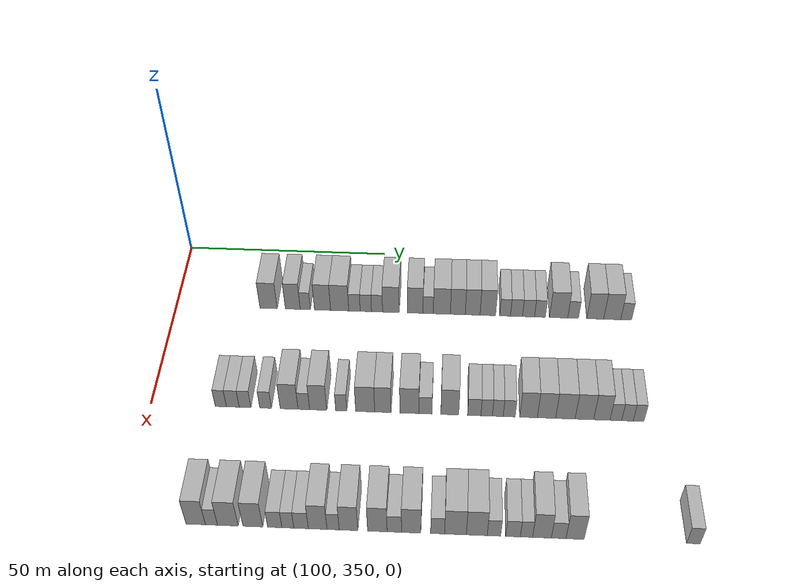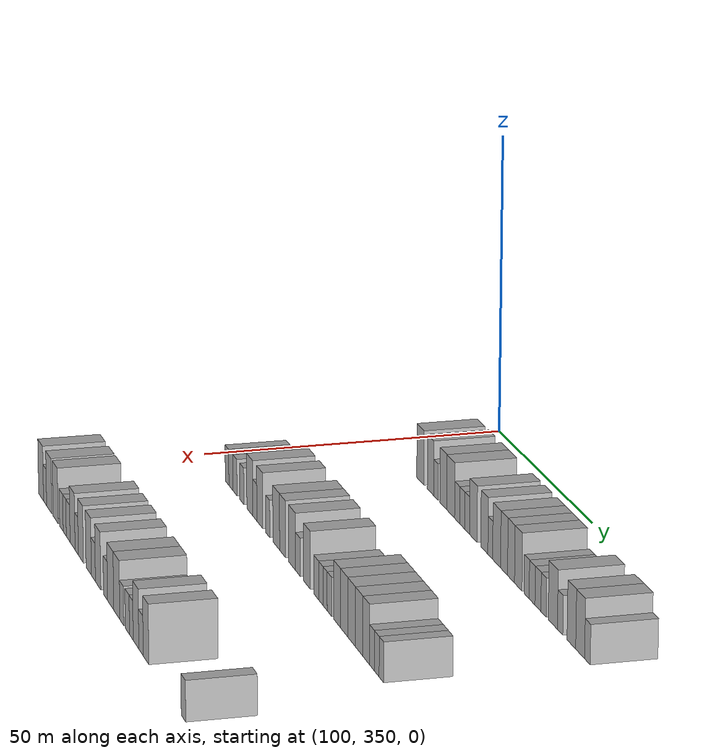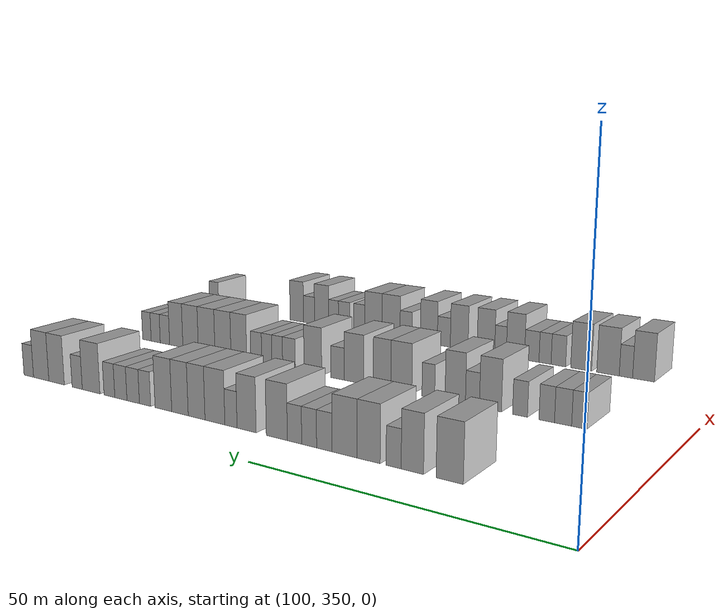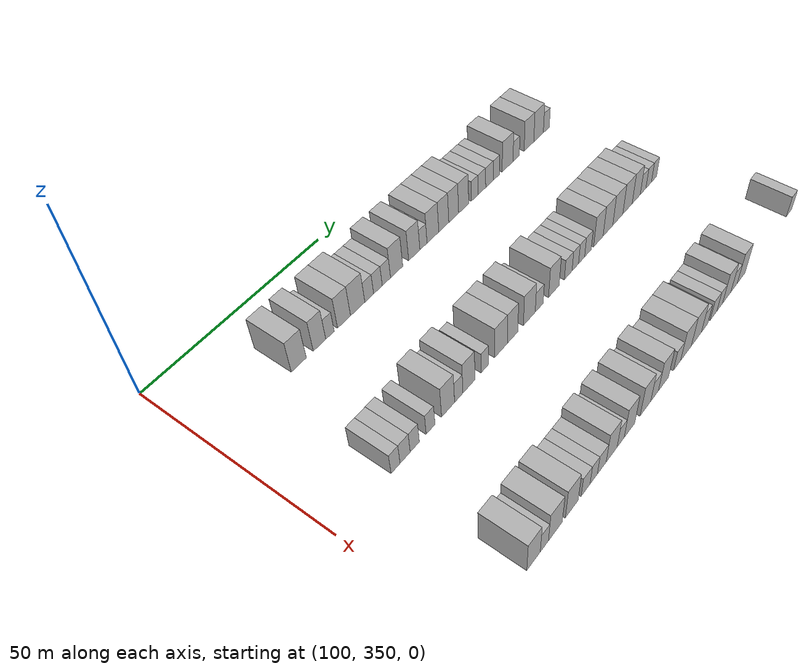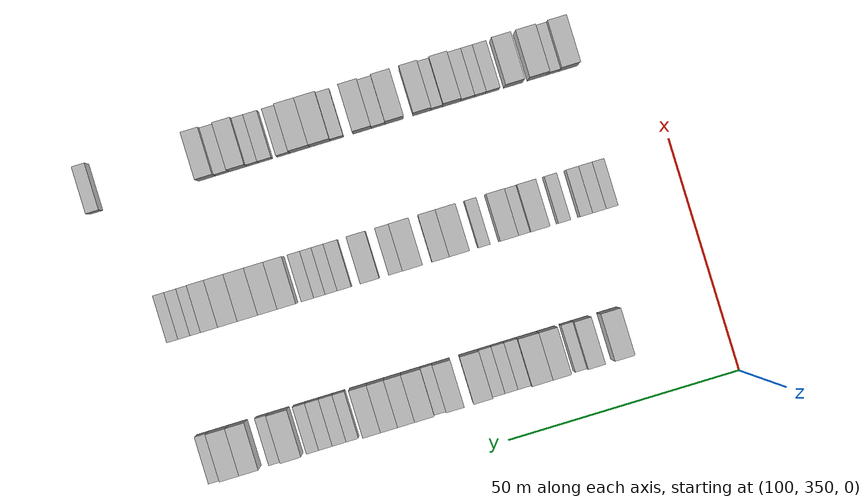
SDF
<sdf version="1.6">
 <world name="default">
  <model name="building_885">
   <static>1</static>
   <pose>115.0000 372.6922 0 0.000000 0.000000 0.000000</pose>
   <link name="link">
    <pose>0 0 4.50 0 0 0</pose>
    <collision name="collision"><geometry><box><size>10.0000 4.2443 9.0000</size></box></geometry></collision>
    <visual name="visual">
     <cast_shadows>0</cast_shadows>
     <geometry><box><size>10.0000 4.2443 9.0000</size></box></geometry>
     <material>
      <script>
       <uri>model://HANNAS_wall/materials/scripts</uri>
       <uri>model://HANNAS_wall/materials/textures</uri>
       <name>vrc/HANNAS_wall</name>
      </script>
     </material>
    </visual>
   </link>
  </model>
  <model name="building_886">
   <static>1</static>
   <pose>115.0000 378.6410 0 0.000000 0.000000 0.000000</pose>
   <link name="link">
    <pose>0 0 4.50 0 0 0</pose>
    <collision name="collision"><geometry><box><size>10.0000 3.6533 9.0000</size></box></geometry></collision>
    <visual name="visual">
     <cast_shadows>0</cast_shadows>
     <geometry><box><size>10.0000 3.6533 9.0000</size></box></geometry>
     <material>
      <script>
       <uri>model://HANNAS_wall/materials/scripts</uri>
       <uri>model://HANNAS_wall/materials/textures</uri>
       <name>vrc/HANNAS_wall</name>
      </script>
     </material>
    </visual>
   </link>
  </model>
  <model name="building_887">
   <static>1</static>
   <pose>115.0000 381.7189 0 0.000000 0.000000 0.000000</pose>
   <link name="link">
    <pose>0 0 3.00 0 0 0</pose>
    <collision name="collision"><geometry><box><size>10.0000 2.5026 6.0000</size></box></geometry></collision>
    <visual name="visual">
     <cast_shadows>0</cast_shadows>
     <geometry><box><size>10.0000 2.5026 6.0000</size></box></geometry>
     <material>
      <script>
       <uri>model://HANNAS_wall/materials/scripts</uri>
       <uri>model://HANNAS_wall/materials/textures</uri>
       <name>vrc/HANNAS_wall</name>
      </script>
     </material>
    </visual>
   </link>
  </model>
  <model name="building_888">
   <static>1</static>
   <pose>115.0000 385.9446 0 0.000000 0.000000 0.000000</pose>
   <link name="link">
    <pose>0 0 4.50 0 0 0</pose>
    <collision name="collision"><geometry><box><size>10.0000 3.9487 9.0000</size></box></geometry></collision>
    <visual name="visual">
     <cast_shadows>0</cast_shadows>
     <geometry><box><size>10.0000 3.9487 9.0000</size></box></geometry>
     <material>
      <script>
       <uri>model://HANNAS_wall/materials/scripts</uri>
       <uri>model://HANNAS_wall/materials/textures</uri>
       <name>vrc/HANNAS_wall</name>
      </script>
     </material>
    </visual>
   </link>
  </model>
  <model name="building_889">
   <static>1</static>
   <pose>115.0000 390.1400 0 0.000000 0.000000 0.000000</pose>
   <link name="link">
    <pose>0 0 4.50 0 0 0</pose>
    <collision name="collision"><geometry><box><size>10.0000 4.4420 9.0000</size></box></geometry></collision>
    <visual name="visual">
     <cast_shadows>0</cast_shadows>
     <geometry><box><size>10.0000 4.4420 9.0000</size></box></geometry>
     <material>
      <script>
       <uri>model://HANNAS_wall/materials/scripts</uri>
       <uri>model://HANNAS_wall/materials/textures</uri>
       <name>vrc/HANNAS_wall</name>
      </script>
     </material>
    </visual>
   </link>
  </model>
  <model name="building_890">
   <static>1</static>
   <pose>115.0000 393.7654 0 0.000000 0.000000 0.000000</pose>
   <link name="link">
    <pose>0 0 3.00 0 0 0</pose>
    <collision name="collision"><geometry><box><size>10.0000 2.8089 6.0000</size></box></geometry></collision>
    <visual name="visual">
     <cast_shadows>0</cast_shadows>
     <geometry><box><size>10.0000 2.8089 6.0000</size></box></geometry>
     <material>
      <script>
       <uri>model://HANNAS_wall/materials/scripts</uri>
       <uri>model://HANNAS_wall/materials/textures</uri>
       <name>vrc/HANNAS_wall</name>
      </script>
     </material>
    </visual>
   </link>
  </model>
  <model name="building_891">
   <static>1</static>
   <pose>115.0000 396.5514 0 0.000000 0.000000 0.000000</pose>
   <link name="link">
    <pose>0 0 3.00 0 0 0</pose>
    <collision name="collision"><geometry><box><size>10.0000 2.7631 6.0000</size></box></geometry></collision>
    <visual name="visual">
     <cast_shadows>0</cast_shadows>
     <geometry><box><size>10.0000 2.7631 6.0000</size></box></geometry>
     <material>
      <script>
       <uri>model://HANNAS_wall/materials/scripts</uri>
       <uri>model://HANNAS_wall/materials/textures</uri>
       <name>vrc/HANNAS_wall</name>
      </script>
     </material>
    </visual>
   </link>
  </model>
  <model name="building_892">
   <static>1</static>
   <pose>115.0000 399.2855 0 0.000000 0.000000 0.000000</pose>
   <link name="link">
    <pose>0 0 3.00 0 0 0</pose>
    <collision name="collision"><geometry><box><size>10.0000 2.7050 6.0000</size></box></geometry></collision>
    <visual name="visual">
     <cast_shadows>0</cast_shadows>
     <geometry><box><size>10.0000 2.7050 6.0000</size></box></geometry>
     <material>
      <script>
       <uri>model://HANNAS_wall/materials/scripts</uri>
       <uri>model://HANNAS_wall/materials/textures</uri>
       <name>vrc/HANNAS_wall</name>
      </script>
     </material>
    </visual>
   </link>
  </model>
  <model name="building_893">
   <static>1</static>
   <pose>115.0000 402.6679 0 0.000000 0.000000 0.000000</pose>
   <link name="link">
    <pose>0 0 4.50 0 0 0</pose>
    <collision name="collision"><geometry><box><size>10.0000 4.0598 9.0000</size></box></geometry></collision>
    <visual name="visual">
     <cast_shadows>0</cast_shadows>
     <geometry><box><size>10.0000 4.0598 9.0000</size></box></geometry>
     <material>
      <script>
       <uri>model://HANNAS_wall/materials/scripts</uri>
       <uri>model://HANNAS_wall/materials/textures</uri>
       <name>vrc/HANNAS_wall</name>
      </script>
     </material>
    </visual>
   </link>
  </model>
  <model name="building_894">
   <static>1</static>
   <pose>115.0000 408.6140 0 0.000000 0.000000 0.000000</pose>
   <link name="link">
    <pose>0 0 4.50 0 0 0</pose>
    <collision name="collision"><geometry><box><size>10.0000 3.8325 9.0000</size></box></geometry></collision>
    <visual name="visual">
     <cast_shadows>0</cast_shadows>
     <geometry><box><size>10.0000 3.8325 9.0000</size></box></geometry>
     <material>
      <script>
       <uri>model://HANNAS_wall/materials/scripts</uri>
       <uri>model://HANNAS_wall/materials/textures</uri>
       <name>vrc/HANNAS_wall</name>
      </script>
     </material>
    </visual>
   </link>
  </model>
  <model name="building_895">
   <static>1</static>
   <pose>115.0000 411.7790 0 0.000000 0.000000 0.000000</pose>
   <link name="link">
    <pose>0 0 3.00 0 0 0</pose>
    <collision name="collision"><geometry><box><size>10.0000 2.4976 6.0000</size></box></geometry></collision>
    <visual name="visual">
     <cast_shadows>0</cast_shadows>
     <geometry><box><size>10.0000 2.4976 6.0000</size></box></geometry>
     <material>
      <script>
       <uri>model://HANNAS_wall/materials/scripts</uri>
       <uri>model://HANNAS_wall/materials/textures</uri>
       <name>vrc/HANNAS_wall</name>
      </script>
     </material>
    </visual>
   </link>
  </model>
  <model name="building_896">
   <static>1</static>
   <pose>115.0000 415.1116 0 0.000000 0.000000 0.000000</pose>
   <link name="link">
    <pose>0 0 4.50 0 0 0</pose>
    <collision name="collision"><geometry><box><size>10.0000 4.1676 9.0000</size></box></geometry></collision>
    <visual name="visual">
     <cast_shadows>0</cast_shadows>
     <geometry><box><size>10.0000 4.1676 9.0000</size></box></geometry>
     <material>
      <script>
       <uri>model://HANNAS_wall/materials/scripts</uri>
       <uri>model://HANNAS_wall/materials/textures</uri>
       <name>vrc/HANNAS_wall</name>
      </script>
     </material>
    </visual>
   </link>
  </model>
  <model name="building_897">
   <static>1</static>
   <pose>115.0000 419.0024 0 0.000000 0.000000 0.000000</pose>
   <link name="link">
    <pose>0 0 4.50 0 0 0</pose>
    <collision name="collision"><geometry><box><size>10.0000 3.6140 9.0000</size></box></geometry></collision>
    <visual name="visual">
     <cast_shadows>0</cast_shadows>
     <geometry><box><size>10.0000 3.6140 9.0000</size></box></geometry>
     <material>
      <script>
       <uri>model://HANNAS_wall/materials/scripts</uri>
       <uri>model://HANNAS_wall/materials/textures</uri>
       <name>vrc/HANNAS_wall</name>
      </script>
     </material>
    </visual>
   </link>
  </model>
  <model name="building_898">
   <static>1</static>
   <pose>115.0000 422.6181 0 0.000000 0.000000 0.000000</pose>
   <link name="link">
    <pose>0 0 4.50 0 0 0</pose>
    <collision name="collision"><geometry><box><size>10.0000 3.6176 9.0000</size></box></geometry></collision>
    <visual name="visual">
     <cast_shadows>0</cast_shadows>
     <geometry><box><size>10.0000 3.6176 9.0000</size></box></geometry>
     <material>
      <script>
       <uri>model://HANNAS_wall/materials/scripts</uri>
       <uri>model://HANNAS_wall/materials/textures</uri>
       <name>vrc/HANNAS_wall</name>
      </script>
     </material>
    </visual>
   </link>
  </model>
  <model name="building_899">
   <static>1</static>
   <pose>115.0000 426.3099 0 0.000000 0.000000 0.000000</pose>
   <link name="link">
    <pose>0 0 4.50 0 0 0</pose>
    <collision name="collision"><geometry><box><size>10.0000 3.7660 9.0000</size></box></geometry></collision>
    <visual name="visual">
     <cast_shadows>0</cast_shadows>
     <geometry><box><size>10.0000 3.7660 9.0000</size></box></geometry>
     <material>
      <script>
       <uri>model://HANNAS_wall/materials/scripts</uri>
       <uri>model://HANNAS_wall/materials/textures</uri>
       <name>vrc/HANNAS_wall</name>
      </script>
     </material>
    </visual>
   </link>
  </model>
  <model name="building_900">
   <static>1</static>
   <pose>115.0000 430.4984 0 0.000000 0.000000 0.000000</pose>
   <link name="link">
    <pose>0 0 3.00 0 0 0</pose>
    <collision name="collision"><geometry><box><size>10.0000 2.6109 6.0000</size></box></geometry></collision>
    <visual name="visual">
     <cast_shadows>0</cast_shadows>
     <geometry><box><size>10.0000 2.6109 6.0000</size></box></geometry>
     <material>
      <script>
       <uri>model://HANNAS_wall/materials/scripts</uri>
       <uri>model://HANNAS_wall/materials/textures</uri>
       <name>vrc/HANNAS_wall</name>
      </script>
     </material>
    </visual>
   </link>
  </model>
  <model name="building_901">
   <static>1</static>
   <pose>115.0000 433.2678 0 0.000000 0.000000 0.000000</pose>
   <link name="link">
    <pose>0 0 3.00 0 0 0</pose>
    <collision name="collision"><geometry><box><size>10.0000 2.9280 6.0000</size></box></geometry></collision>
    <visual name="visual">
     <cast_shadows>0</cast_shadows>
     <geometry><box><size>10.0000 2.9280 6.0000</size></box></geometry>
     <material>
      <script>
       <uri>model://HANNAS_wall/materials/scripts</uri>
       <uri>model://HANNAS_wall/materials/textures</uri>
       <name>vrc/HANNAS_wall</name>
      </script>
     </material>
    </visual>
   </link>
  </model>
  <model name="building_902">
   <static>1</static>
   <pose>115.0000 436.1881 0 0.000000 0.000000 0.000000</pose>
   <link name="link">
    <pose>0 0 3.00 0 0 0</pose>
    <collision name="collision"><geometry><box><size>10.0000 2.9125 6.0000</size></box></geometry></collision>
    <visual name="visual">
     <cast_shadows>0</cast_shadows>
     <geometry><box><size>10.0000 2.9125 6.0000</size></box></geometry>
     <material>
      <script>
       <uri>model://HANNAS_wall/materials/scripts</uri>
       <uri>model://HANNAS_wall/materials/textures</uri>
       <name>vrc/HANNAS_wall</name>
      </script>
     </material>
    </visual>
   </link>
  </model>
  <model name="building_903">
   <static>1</static>
   <pose>115.0000 438.9541 0 0.000000 0.000000 0.000000</pose>
   <link name="link">
    <pose>0 0 3.00 0 0 0</pose>
    <collision name="collision"><geometry><box><size>10.0000 2.6195 6.0000</size></box></geometry></collision>
    <visual name="visual">
     <cast_shadows>0</cast_shadows>
     <geometry><box><size>10.0000 2.6195 6.0000</size></box></geometry>
     <material>
      <script>
       <uri>model://HANNAS_wall/materials/scripts</uri>
       <uri>model://HANNAS_wall/materials/textures</uri>
       <name>vrc/HANNAS_wall</name>
      </script>
     </material>
    </visual>
   </link>
  </model>
  <model name="building_904">
   <static>1</static>
   <pose>115.0000 443.4768 0 0.000000 0.000000 0.000000</pose>
   <link name="link">
    <pose>0 0 4.50 0 0 0</pose>
    <collision name="collision"><geometry><box><size>10.0000 4.4258 9.0000</size></box></geometry></collision>
    <visual name="visual">
     <cast_shadows>0</cast_shadows>
     <geometry><box><size>10.0000 4.4258 9.0000</size></box></geometry>
     <material>
      <script>
       <uri>model://HANNAS_wall/materials/scripts</uri>
       <uri>model://HANNAS_wall/materials/textures</uri>
       <name>vrc/HANNAS_wall</name>
      </script>
     </material>
    </visual>
   </link>
  </model>
  <model name="building_905">
   <static>1</static>
   <pose>115.0000 446.9936 0 0.000000 0.000000 0.000000</pose>
   <link name="link">
    <pose>0 0 3.00 0 0 0</pose>
    <collision name="collision"><geometry><box><size>10.0000 2.6079 6.0000</size></box></geometry></collision>
    <visual name="visual">
     <cast_shadows>0</cast_shadows>
     <geometry><box><size>10.0000 2.6079 6.0000</size></box></geometry>
     <material>
      <script>
       <uri>model://HANNAS_wall/materials/scripts</uri>
       <uri>model://HANNAS_wall/materials/textures</uri>
       <name>vrc/HANNAS_wall</name>
      </script>
     </material>
    </visual>
   </link>
  </model>
  <model name="building_906">
   <static>1</static>
   <pose>115.0000 452.3408 0 0.000000 0.000000 0.000000</pose>
   <link name="link">
    <pose>0 0 4.50 0 0 0</pose>
    <collision name="collision"><geometry><box><size>10.0000 4.0865 9.0000</size></box></geometry></collision>
    <visual name="visual">
     <cast_shadows>0</cast_shadows>
     <geometry><box><size>10.0000 4.0865 9.0000</size></box></geometry>
     <material>
      <script>
       <uri>model://HANNAS_wall/materials/scripts</uri>
       <uri>model://HANNAS_wall/materials/textures</uri>
       <name>vrc/HANNAS_wall</name>
      </script>
     </material>
    </visual>
   </link>
  </model>
  <model name="building_907">
   <static>1</static>
   <pose>115.0000 456.4503 0 0.000000 0.000000 0.000000</pose>
   <link name="link">
    <pose>0 0 4.50 0 0 0</pose>
    <collision name="collision"><geometry><box><size>10.0000 4.1325 9.0000</size></box></geometry></collision>
    <visual name="visual">
     <cast_shadows>0</cast_shadows>
     <geometry><box><size>10.0000 4.1325 9.0000</size></box></geometry>
     <material>
      <script>
       <uri>model://HANNAS_wall/materials/scripts</uri>
       <uri>model://HANNAS_wall/materials/textures</uri>
       <name>vrc/HANNAS_wall</name>
      </script>
     </material>
    </visual>
   </link>
  </model>
  <model name="building_908">
   <static>1</static>
   <pose>115.0000 459.8263 0 0.000000 0.000000 0.000000</pose>
   <link name="link">
    <pose>0 0 3.00 0 0 0</pose>
    <collision name="collision"><geometry><box><size>10.0000 2.6194 6.0000</size></box></geometry></collision>
    <visual name="visual">
     <cast_shadows>0</cast_shadows>
     <geometry><box><size>10.0000 2.6194 6.0000</size></box></geometry>
     <material>
      <script>
       <uri>model://HANNAS_wall/materials/scripts</uri>
       <uri>model://HANNAS_wall/materials/textures</uri>
       <name>vrc/HANNAS_wall</name>
      </script>
     </material>
    </visual>
   </link>
  </model>
  <model name="building_1116">
   <static>1</static>
   <pose>145.0000 365.9504 0 0.000000 0.000000 0.000000</pose>
   <link name="link">
    <pose>0 0 3.00 0 0 0</pose>
    <collision name="collision"><geometry><box><size>10.0000 2.5365 6.0000</size></box></geometry></collision>
    <visual name="visual">
     <cast_shadows>0</cast_shadows>
     <geometry><box><size>10.0000 2.5365 6.0000</size></box></geometry>
     <material>
      <script>
       <uri>model://HANNAS_wall/materials/scripts</uri>
       <uri>model://HANNAS_wall/materials/textures</uri>
       <name>vrc/HANNAS_wall</name>
      </script>
     </material>
    </visual>
   </link>
  </model>
  <model name="building_1117">
   <static>1</static>
   <pose>145.0000 368.6664 0 0.000000 0.000000 0.000000</pose>
   <link name="link">
    <pose>0 0 3.00 0 0 0</pose>
    <collision name="collision"><geometry><box><size>10.0000 2.8955 6.0000</size></box></geometry></collision>
    <visual name="visual">
     <cast_shadows>0</cast_shadows>
     <geometry><box><size>10.0000 2.8955 6.0000</size></box></geometry>
     <material>
      <script>
       <uri>model://HANNAS_wall/materials/scripts</uri>
       <uri>model://HANNAS_wall/materials/textures</uri>
       <name>vrc/HANNAS_wall</name>
      </script>
     </material>
    </visual>
   </link>
  </model>
  <model name="building_1118">
   <static>1</static>
   <pose>145.0000 371.4453 0 0.000000 0.000000 0.000000</pose>
   <link name="link">
    <pose>0 0 3.00 0 0 0</pose>
    <collision name="collision"><geometry><box><size>10.0000 2.6623 6.0000</size></box></geometry></collision>
    <visual name="visual">
     <cast_shadows>0</cast_shadows>
     <geometry><box><size>10.0000 2.6623 6.0000</size></box></geometry>
     <material>
      <script>
       <uri>model://HANNAS_wall/materials/scripts</uri>
       <uri>model://HANNAS_wall/materials/textures</uri>
       <name>vrc/HANNAS_wall</name>
      </script>
     </material>
    </visual>
   </link>
  </model>
  <model name="building_1119">
   <static>1</static>
   <pose>145.0000 376.0963 0 0.000000 0.000000 0.000000</pose>
   <link name="link">
    <pose>0 0 3.00 0 0 0</pose>
    <collision name="collision"><geometry><box><size>10.0000 2.6397 6.0000</size></box></geometry></collision>
    <visual name="visual">
     <cast_shadows>0</cast_shadows>
     <geometry><box><size>10.0000 2.6397 6.0000</size></box></geometry>
     <material>
      <script>
       <uri>model://HANNAS_wall/materials/scripts</uri>
       <uri>model://HANNAS_wall/materials/textures</uri>
       <name>vrc/HANNAS_wall</name>
      </script>
     </material>
    </visual>
   </link>
  </model>
  <model name="building_1120">
   <static>1</static>
   <pose>145.0000 381.4301 0 0.000000 0.000000 0.000000</pose>
   <link name="link">
    <pose>0 0 4.50 0 0 0</pose>
    <collision name="collision"><geometry><box><size>10.0000 4.0281 9.0000</size></box></geometry></collision>
    <visual name="visual">
     <cast_shadows>0</cast_shadows>
     <geometry><box><size>10.0000 4.0281 9.0000</size></box></geometry>
     <material>
      <script>
       <uri>model://HANNAS_wall/materials/scripts</uri>
       <uri>model://HANNAS_wall/materials/textures</uri>
       <name>vrc/HANNAS_wall</name>
      </script>
     </material>
    </visual>
   </link>
  </model>
  <model name="building_1121">
   <static>1</static>
   <pose>145.0000 384.7499 0 0.000000 0.000000 0.000000</pose>
   <link name="link">
    <pose>0 0 3.00 0 0 0</pose>
    <collision name="collision"><geometry><box><size>10.0000 2.6114 6.0000</size></box></geometry></collision>
    <visual name="visual">
     <cast_shadows>0</cast_shadows>
     <geometry><box><size>10.0000 2.6114 6.0000</size></box></geometry>
     <material>
      <script>
       <uri>model://HANNAS_wall/materials/scripts</uri>
       <uri>model://HANNAS_wall/materials/textures</uri>
       <name>vrc/HANNAS_wall</name>
      </script>
     </material>
    </visual>
   </link>
  </model>
  <model name="building_1122">
   <static>1</static>
   <pose>145.0000 387.9984 0 0.000000 0.000000 0.000000</pose>
   <link name="link">
    <pose>0 0 4.50 0 0 0</pose>
    <collision name="collision"><geometry><box><size>10.0000 3.8856 9.0000</size></box></geometry></collision>
    <visual name="visual">
     <cast_shadows>0</cast_shadows>
     <geometry><box><size>10.0000 3.8856 9.0000</size></box></geometry>
     <material>
      <script>
       <uri>model://HANNAS_wall/materials/scripts</uri>
       <uri>model://HANNAS_wall/materials/textures</uri>
       <name>vrc/HANNAS_wall</name>
      </script>
     </material>
    </visual>
   </link>
  </model>
  <model name="building_1123">
   <static>1</static>
   <pose>145.0000 393.1971 0 0.000000 0.000000 0.000000</pose>
   <link name="link">
    <pose>0 0 3.00 0 0 0</pose>
    <collision name="collision"><geometry><box><size>10.0000 2.5116 6.0000</size></box></geometry></collision>
    <visual name="visual">
     <cast_shadows>0</cast_shadows>
     <geometry><box><size>10.0000 2.5116 6.0000</size></box></geometry>
     <material>
      <script>
       <uri>model://HANNAS_wall/materials/scripts</uri>
       <uri>model://HANNAS_wall/materials/textures</uri>
       <name>vrc/HANNAS_wall</name>
      </script>
     </material>
    </visual>
   </link>
  </model>
  <model name="building_1124">
   <static>1</static>
   <pose>145.0000 398.5908 0 0.000000 0.000000 0.000000</pose>
   <link name="link">
    <pose>0 0 4.50 0 0 0</pose>
    <collision name="collision"><geometry><box><size>10.0000 4.2759 9.0000</size></box></geometry></collision>
    <visual name="visual">
     <cast_shadows>0</cast_shadows>
     <geometry><box><size>10.0000 4.2759 9.0000</size></box></geometry>
     <material>
      <script>
       <uri>model://HANNAS_wall/materials/scripts</uri>
       <uri>model://HANNAS_wall/materials/textures</uri>
       <name>vrc/HANNAS_wall</name>
      </script>
     </material>
    </visual>
   </link>
  </model>
  <model name="building_1125">
   <static>1</static>
   <pose>145.0000 402.5569 0 0.000000 0.000000 0.000000</pose>
   <link name="link">
    <pose>0 0 4.50 0 0 0</pose>
    <collision name="collision"><geometry><box><size>10.0000 3.6564 9.0000</size></box></geometry></collision>
    <visual name="visual">
     <cast_shadows>0</cast_shadows>
     <geometry><box><size>10.0000 3.6564 9.0000</size></box></geometry>
     <material>
      <script>
       <uri>model://HANNAS_wall/materials/scripts</uri>
       <uri>model://HANNAS_wall/materials/textures</uri>
       <name>vrc/HANNAS_wall</name>
      </script>
     </material>
    </visual>
   </link>
  </model>
  <model name="building_1126">
   <static>1</static>
   <pose>145.0000 408.5174 0 0.000000 0.000000 0.000000</pose>
   <link name="link">
    <pose>0 0 4.50 0 0 0</pose>
    <collision name="collision"><geometry><box><size>10.0000 4.2645 9.0000</size></box></geometry></collision>
    <visual name="visual">
     <cast_shadows>0</cast_shadows>
     <geometry><box><size>10.0000 4.2645 9.0000</size></box></geometry>
     <material>
      <script>
       <uri>model://HANNAS_wall/materials/scripts</uri>
       <uri>model://HANNAS_wall/materials/textures</uri>
       <name>vrc/HANNAS_wall</name>
      </script>
     </material>
    </visual>
   </link>
  </model>
  <model name="building_1127">
   <static>1</static>
   <pose>145.0000 412.1159 0 0.000000 0.000000 0.000000</pose>
   <link name="link">
    <pose>0 0 3.00 0 0 0</pose>
    <collision name="collision"><geometry><box><size>10.0000 2.9325 6.0000</size></box></geometry></collision>
    <visual name="visual">
     <cast_shadows>0</cast_shadows>
     <geometry><box><size>10.0000 2.9325 6.0000</size></box></geometry>
     <material>
      <script>
       <uri>model://HANNAS_wall/materials/scripts</uri>
       <uri>model://HANNAS_wall/materials/textures</uri>
       <name>vrc/HANNAS_wall</name>
      </script>
     </material>
    </visual>
   </link>
  </model>
  <model name="building_1128">
   <static>1</static>
   <pose>145.0000 417.5816 0 0.000000 0.000000 0.000000</pose>
   <link name="link">
    <pose>0 0 4.50 0 0 0</pose>
    <collision name="collision"><geometry><box><size>10.0000 3.9990 9.0000</size></box></geometry></collision>
    <visual name="visual">
     <cast_shadows>0</cast_shadows>
     <geometry><box><size>10.0000 3.9990 9.0000</size></box></geometry>
     <material>
      <script>
       <uri>model://HANNAS_wall/materials/scripts</uri>
       <uri>model://HANNAS_wall/materials/textures</uri>
       <name>vrc/HANNAS_wall</name>
      </script>
     </material>
    </visual>
   </link>
  </model>
  <model name="building_1129">
   <static>1</static>
   <pose>145.0000 423.0706 0 0.000000 0.000000 0.000000</pose>
   <link name="link">
    <pose>0 0 3.00 0 0 0</pose>
    <collision name="collision"><geometry><box><size>10.0000 2.9789 6.0000</size></box></geometry></collision>
    <visual name="visual">
     <cast_shadows>0</cast_shadows>
     <geometry><box><size>10.0000 2.9789 6.0000</size></box></geometry>
     <material>
      <script>
       <uri>model://HANNAS_wall/materials/scripts</uri>
       <uri>model://HANNAS_wall/materials/textures</uri>
       <name>vrc/HANNAS_wall</name>
      </script>
     </material>
    </visual>
   </link>
  </model>
  <model name="building_1130">
   <static>1</static>
   <pose>145.0000 425.8421 0 0.000000 0.000000 0.000000</pose>
   <link name="link">
    <pose>0 0 3.00 0 0 0</pose>
    <collision name="collision"><geometry><box><size>10.0000 2.5640 6.0000</size></box></geometry></collision>
    <visual name="visual">
     <cast_shadows>0</cast_shadows>
     <geometry><box><size>10.0000 2.5640 6.0000</size></box></geometry>
     <material>
      <script>
       <uri>model://HANNAS_wall/materials/scripts</uri>
       <uri>model://HANNAS_wall/materials/textures</uri>
       <name>vrc/HANNAS_wall</name>
      </script>
     </material>
    </visual>
   </link>
  </model>
  <model name="building_1131">
   <static>1</static>
   <pose>145.0000 428.3365 0 0.000000 0.000000 0.000000</pose>
   <link name="link">
    <pose>0 0 3.00 0 0 0</pose>
    <collision name="collision"><geometry><box><size>10.0000 2.4249 6.0000</size></box></geometry></collision>
    <visual name="visual">
     <cast_shadows>0</cast_shadows>
     <geometry><box><size>10.0000 2.4249 6.0000</size></box></geometry>
     <material>
      <script>
       <uri>model://HANNAS_wall/materials/scripts</uri>
       <uri>model://HANNAS_wall/materials/textures</uri>
       <name>vrc/HANNAS_wall</name>
      </script>
     </material>
    </visual>
   </link>
  </model>
  <model name="building_1132">
   <static>1</static>
   <pose>145.0000 430.8855 0 0.000000 0.000000 0.000000</pose>
   <link name="link">
    <pose>0 0 3.00 0 0 0</pose>
    <collision name="collision"><geometry><box><size>10.0000 2.6730 6.0000</size></box></geometry></collision>
    <visual name="visual">
     <cast_shadows>0</cast_shadows>
     <geometry><box><size>10.0000 2.6730 6.0000</size></box></geometry>
     <material>
      <script>
       <uri>model://HANNAS_wall/materials/scripts</uri>
       <uri>model://HANNAS_wall/materials/textures</uri>
       <name>vrc/HANNAS_wall</name>
      </script>
     </material>
    </visual>
   </link>
  </model>
  <model name="building_1133">
   <static>1</static>
   <pose>145.0000 435.1883 0 0.000000 0.000000 0.000000</pose>
   <link name="link">
    <pose>0 0 4.50 0 0 0</pose>
    <collision name="collision"><geometry><box><size>10.0000 3.9325 9.0000</size></box></geometry></collision>
    <visual name="visual">
     <cast_shadows>0</cast_shadows>
     <geometry><box><size>10.0000 3.9325 9.0000</size></box></geometry>
     <material>
      <script>
       <uri>model://HANNAS_wall/materials/scripts</uri>
       <uri>model://HANNAS_wall/materials/textures</uri>
       <name>vrc/HANNAS_wall</name>
      </script>
     </material>
    </visual>
   </link>
  </model>
  <model name="building_1134">
   <static>1</static>
   <pose>145.0000 439.2021 0 0.000000 0.000000 0.000000</pose>
   <link name="link">
    <pose>0 0 4.50 0 0 0</pose>
    <collision name="collision"><geometry><box><size>10.0000 4.0951 9.0000</size></box></geometry></collision>
    <visual name="visual">
     <cast_shadows>0</cast_shadows>
     <geometry><box><size>10.0000 4.0951 9.0000</size></box></geometry>
     <material>
      <script>
       <uri>model://HANNAS_wall/materials/scripts</uri>
       <uri>model://HANNAS_wall/materials/textures</uri>
       <name>vrc/HANNAS_wall</name>
      </script>
     </material>
    </visual>
   </link>
  </model>
  <model name="building_1135">
   <static>1</static>
   <pose>145.0000 443.4162 0 0.000000 0.000000 0.000000</pose>
   <link name="link">
    <pose>0 0 4.50 0 0 0</pose>
    <collision name="collision"><geometry><box><size>10.0000 4.3330 9.0000</size></box></geometry></collision>
    <visual name="visual">
     <cast_shadows>0</cast_shadows>
     <geometry><box><size>10.0000 4.3330 9.0000</size></box></geometry>
     <material>
      <script>
       <uri>model://HANNAS_wall/materials/scripts</uri>
       <uri>model://HANNAS_wall/materials/textures</uri>
       <name>vrc/HANNAS_wall</name>
      </script>
     </material>
    </visual>
   </link>
  </model>
  <model name="building_1136">
   <static>1</static>
   <pose>145.0000 447.6474 0 0.000000 0.000000 0.000000</pose>
   <link name="link">
    <pose>0 0 4.50 0 0 0</pose>
    <collision name="collision"><geometry><box><size>10.0000 4.1295 9.0000</size></box></geometry></collision>
    <visual name="visual">
     <cast_shadows>0</cast_shadows>
     <geometry><box><size>10.0000 4.1295 9.0000</size></box></geometry>
     <material>
      <script>
       <uri>model://HANNAS_wall/materials/scripts</uri>
       <uri>model://HANNAS_wall/materials/textures</uri>
       <name>vrc/HANNAS_wall</name>
      </script>
     </material>
    </visual>
   </link>
  </model>
  <model name="building_1137">
   <static>1</static>
   <pose>145.0000 451.5225 0 0.000000 0.000000 0.000000</pose>
   <link name="link">
    <pose>0 0 4.50 0 0 0</pose>
    <collision name="collision"><geometry><box><size>10.0000 3.6207 9.0000</size></box></geometry></collision>
    <visual name="visual">
     <cast_shadows>0</cast_shadows>
     <geometry><box><size>10.0000 3.6207 9.0000</size></box></geometry>
     <material>
      <script>
       <uri>model://HANNAS_wall/materials/scripts</uri>
       <uri>model://HANNAS_wall/materials/textures</uri>
       <name>vrc/HANNAS_wall</name>
      </script>
     </material>
    </visual>
   </link>
  </model>
  <model name="building_1138">
   <static>1</static>
   <pose>145.0000 454.6284 0 0.000000 0.000000 0.000000</pose>
   <link name="link">
    <pose>0 0 3.00 0 0 0</pose>
    <collision name="collision"><geometry><box><size>10.0000 2.5911 6.0000</size></box></geometry></collision>
    <visual name="visual">
     <cast_shadows>0</cast_shadows>
     <geometry><box><size>10.0000 2.5911 6.0000</size></box></geometry>
     <material>
      <script>
       <uri>model://HANNAS_wall/materials/scripts</uri>
       <uri>model://HANNAS_wall/materials/textures</uri>
       <name>vrc/HANNAS_wall</name>
      </script>
     </material>
    </visual>
   </link>
  </model>
  <model name="building_1139">
   <static>1</static>
   <pose>145.0000 457.2026 0 0.000000 0.000000 0.000000</pose>
   <link name="link">
    <pose>0 0 3.00 0 0 0</pose>
    <collision name="collision"><geometry><box><size>10.0000 2.5573 6.0000</size></box></geometry></collision>
    <visual name="visual">
     <cast_shadows>0</cast_shadows>
     <geometry><box><size>10.0000 2.5573 6.0000</size></box></geometry>
     <material>
      <script>
       <uri>model://HANNAS_wall/materials/scripts</uri>
       <uri>model://HANNAS_wall/materials/textures</uri>
       <name>vrc/HANNAS_wall</name>
      </script>
     </material>
    </visual>
   </link>
  </model>
  <model name="building_1140">
   <static>1</static>
   <pose>145.0000 459.6818 0 0.000000 0.000000 0.000000</pose>
   <link name="link">
    <pose>0 0 3.00 0 0 0</pose>
    <collision name="collision"><geometry><box><size>10.0000 2.4010 6.0000</size></box></geometry></collision>
    <visual name="visual">
     <cast_shadows>0</cast_shadows>
     <geometry><box><size>10.0000 2.4010 6.0000</size></box></geometry>
     <material>
      <script>
       <uri>model://HANNAS_wall/materials/scripts</uri>
       <uri>model://HANNAS_wall/materials/textures</uri>
       <name>vrc/HANNAS_wall</name>
      </script>
     </material>
    </visual>
   </link>
  </model>
  <model name="building_1351">
   <static>1</static>
   <pose>175.0000 365.7825 0 0.000000 0.000000 0.000000</pose>
   <link name="link">
    <pose>0 0 4.50 0 0 0</pose>
    <collision name="collision"><geometry><box><size>10.0000 4.0245 9.0000</size></box></geometry></collision>
    <visual name="visual">
     <cast_shadows>0</cast_shadows>
     <geometry><box><size>10.0000 4.0245 9.0000</size></box></geometry>
     <material>
      <script>
       <uri>model://HANNAS_wall/materials/scripts</uri>
       <uri>model://HANNAS_wall/materials/textures</uri>
       <name>vrc/HANNAS_wall</name>
      </script>
     </material>
    </visual>
   </link>
  </model>
  <model name="building_1352">
   <static>1</static>
   <pose>175.0000 369.0438 0 0.000000 0.000000 0.000000</pose>
   <link name="link">
    <pose>0 0 3.00 0 0 0</pose>
    <collision name="collision"><geometry><box><size>10.0000 2.4981 6.0000</size></box></geometry></collision>
    <visual name="visual">
     <cast_shadows>0</cast_shadows>
     <geometry><box><size>10.0000 2.4981 6.0000</size></box></geometry>
     <material>
      <script>
       <uri>model://HANNAS_wall/materials/scripts</uri>
       <uri>model://HANNAS_wall/materials/textures</uri>
       <name>vrc/HANNAS_wall</name>
      </script>
     </material>
    </visual>
   </link>
  </model>
  <model name="building_1353">
   <static>1</static>
   <pose>175.0000 372.4336 0 0.000000 0.000000 0.000000</pose>
   <link name="link">
    <pose>0 0 4.50 0 0 0</pose>
    <collision name="collision"><geometry><box><size>10.0000 4.2816 9.0000</size></box></geometry></collision>
    <visual name="visual">
     <cast_shadows>0</cast_shadows>
     <geometry><box><size>10.0000 4.2816 9.0000</size></box></geometry>
     <material>
      <script>
       <uri>model://HANNAS_wall/materials/scripts</uri>
       <uri>model://HANNAS_wall/materials/textures</uri>
       <name>vrc/HANNAS_wall</name>
      </script>
     </material>
    </visual>
   </link>
  </model>
  <model name="building_1354">
   <static>1</static>
   <pose>175.0000 377.6249 0 0.000000 0.000000 0.000000</pose>
   <link name="link">
    <pose>0 0 4.50 0 0 0</pose>
    <collision name="collision"><geometry><box><size>10.0000 4.1010 9.0000</size></box></geometry></collision>
    <visual name="visual">
     <cast_shadows>0</cast_shadows>
     <geometry><box><size>10.0000 4.1010 9.0000</size></box></geometry>
     <material>
      <script>
       <uri>model://HANNAS_wall/materials/scripts</uri>
       <uri>model://HANNAS_wall/materials/textures</uri>
       <name>vrc/HANNAS_wall</name>
      </script>
     </material>
    </visual>
   </link>
  </model>
  <model name="building_1355">
   <static>1</static>
   <pose>175.0000 382.1465 0 0.000000 0.000000 0.000000</pose>
   <link name="link">
    <pose>0 0 3.00 0 0 0</pose>
    <collision name="collision"><geometry><box><size>10.0000 2.9421 6.0000</size></box></geometry></collision>
    <visual name="visual">
     <cast_shadows>0</cast_shadows>
     <geometry><box><size>10.0000 2.9421 6.0000</size></box></geometry>
     <material>
      <script>
       <uri>model://HANNAS_wall/materials/scripts</uri>
       <uri>model://HANNAS_wall/materials/textures</uri>
       <name>vrc/HANNAS_wall</name>
      </script>
     </material>
    </visual>
   </link>
  </model>
  <model name="building_1356">
   <static>1</static>
   <pose>175.0000 384.8504 0 0.000000 0.000000 0.000000</pose>
   <link name="link">
    <pose>0 0 3.00 0 0 0</pose>
    <collision name="collision"><geometry><box><size>10.0000 2.4657 6.0000</size></box></geometry></collision>
    <visual name="visual">
     <cast_shadows>0</cast_shadows>
     <geometry><box><size>10.0000 2.4657 6.0000</size></box></geometry>
     <material>
      <script>
       <uri>model://HANNAS_wall/materials/scripts</uri>
       <uri>model://HANNAS_wall/materials/textures</uri>
       <name>vrc/HANNAS_wall</name>
      </script>
     </material>
    </visual>
   </link>
  </model>
  <model name="building_1357">
   <static>1</static>
   <pose>175.0000 387.5823 0 0.000000 0.000000 0.000000</pose>
   <link name="link">
    <pose>0 0 3.00 0 0 0</pose>
    <collision name="collision"><geometry><box><size>10.0000 2.9981 6.0000</size></box></geometry></collision>
    <visual name="visual">
     <cast_shadows>0</cast_shadows>
     <geometry><box><size>10.0000 2.9981 6.0000</size></box></geometry>
     <material>
      <script>
       <uri>model://HANNAS_wall/materials/scripts</uri>
       <uri>model://HANNAS_wall/materials/textures</uri>
       <name>vrc/HANNAS_wall</name>
      </script>
     </material>
    </visual>
   </link>
  </model>
  <model name="building_1358">
   <static>1</static>
   <pose>175.0000 391.0034 0 0.000000 0.000000 0.000000</pose>
   <link name="link">
    <pose>0 0 4.50 0 0 0</pose>
    <collision name="collision"><geometry><box><size>10.0000 3.8442 9.0000</size></box></geometry></collision>
    <visual name="visual">
     <cast_shadows>0</cast_shadows>
     <geometry><box><size>10.0000 3.8442 9.0000</size></box></geometry>
     <material>
      <script>
       <uri>model://HANNAS_wall/materials/scripts</uri>
       <uri>model://HANNAS_wall/materials/textures</uri>
       <name>vrc/HANNAS_wall</name>
      </script>
     </material>
    </visual>
   </link>
  </model>
  <model name="building_1359">
   <static>1</static>
   <pose>175.0000 394.1808 0 0.000000 0.000000 0.000000</pose>
   <link name="link">
    <pose>0 0 3.00 0 0 0</pose>
    <collision name="collision"><geometry><box><size>10.0000 2.5106 6.0000</size></box></geometry></collision>
    <visual name="visual">
     <cast_shadows>0</cast_shadows>
     <geometry><box><size>10.0000 2.5106 6.0000</size></box></geometry>
     <material>
      <script>
       <uri>model://HANNAS_wall/materials/scripts</uri>
       <uri>model://HANNAS_wall/materials/textures</uri>
       <name>vrc/HANNAS_wall</name>
      </script>
     </material>
    </visual>
   </link>
  </model>
  <model name="building_1360">
   <static>1</static>
   <pose>175.0000 397.3545 0 0.000000 0.000000 0.000000</pose>
   <link name="link">
    <pose>0 0 4.50 0 0 0</pose>
    <collision name="collision"><geometry><box><size>10.0000 3.8368 9.0000</size></box></geometry></collision>
    <visual name="visual">
     <cast_shadows>0</cast_shadows>
     <geometry><box><size>10.0000 3.8368 9.0000</size></box></geometry>
     <material>
      <script>
       <uri>model://HANNAS_wall/materials/scripts</uri>
       <uri>model://HANNAS_wall/materials/textures</uri>
       <name>vrc/HANNAS_wall</name>
      </script>
     </material>
    </visual>
   </link>
  </model>
  <model name="building_1361">
   <static>1</static>
   <pose>175.0000 403.2710 0 0.000000 0.000000 0.000000</pose>
   <link name="link">
    <pose>0 0 4.50 0 0 0</pose>
    <collision name="collision"><geometry><box><size>10.0000 3.9962 9.0000</size></box></geometry></collision>
    <visual name="visual">
     <cast_shadows>0</cast_shadows>
     <geometry><box><size>10.0000 3.9962 9.0000</size></box></geometry>
     <material>
      <script>
       <uri>model://HANNAS_wall/materials/scripts</uri>
       <uri>model://HANNAS_wall/materials/textures</uri>
       <name>vrc/HANNAS_wall</name>
      </script>
     </material>
    </visual>
   </link>
  </model>
  <model name="building_1362">
   <static>1</static>
   <pose>175.0000 406.7519 0 0.000000 0.000000 0.000000</pose>
   <link name="link">
    <pose>0 0 3.00 0 0 0</pose>
    <collision name="collision"><geometry><box><size>10.0000 2.9655 6.0000</size></box></geometry></collision>
    <visual name="visual">
     <cast_shadows>0</cast_shadows>
     <geometry><box><size>10.0000 2.9655 6.0000</size></box></geometry>
     <material>
      <script>
       <uri>model://HANNAS_wall/materials/scripts</uri>
       <uri>model://HANNAS_wall/materials/textures</uri>
       <name>vrc/HANNAS_wall</name>
      </script>
     </material>
    </visual>
   </link>
  </model>
  <model name="building_1363">
   <static>1</static>
   <pose>175.0000 410.2164 0 0.000000 0.000000 0.000000</pose>
   <link name="link">
    <pose>0 0 4.50 0 0 0</pose>
    <collision name="collision"><geometry><box><size>10.0000 3.9635 9.0000</size></box></geometry></collision>
    <visual name="visual">
     <cast_shadows>0</cast_shadows>
     <geometry><box><size>10.0000 3.9635 9.0000</size></box></geometry>
     <material>
      <script>
       <uri>model://HANNAS_wall/materials/scripts</uri>
       <uri>model://HANNAS_wall/materials/textures</uri>
       <name>vrc/HANNAS_wall</name>
      </script>
     </material>
    </visual>
   </link>
  </model>
  <model name="building_1364">
   <static>1</static>
   <pose>175.0000 415.6263 0 0.000000 0.000000 0.000000</pose>
   <link name="link">
    <pose>0 0 3.00 0 0 0</pose>
    <collision name="collision"><geometry><box><size>10.0000 2.8563 6.0000</size></box></geometry></collision>
    <visual name="visual">
     <cast_shadows>0</cast_shadows>
     <geometry><box><size>10.0000 2.8563 6.0000</size></box></geometry>
     <material>
      <script>
       <uri>model://HANNAS_wall/materials/scripts</uri>
       <uri>model://HANNAS_wall/materials/textures</uri>
       <name>vrc/HANNAS_wall</name>
      </script>
     </material>
    </visual>
   </link>
  </model>
  <model name="building_1365">
   <static>1</static>
   <pose>175.0000 419.2790 0 0.000000 0.000000 0.000000</pose>
   <link name="link">
    <pose>0 0 4.50 0 0 0</pose>
    <collision name="collision"><geometry><box><size>10.0000 4.4491 9.0000</size></box></geometry></collision>
    <visual name="visual">
     <cast_shadows>0</cast_shadows>
     <geometry><box><size>10.0000 4.4491 9.0000</size></box></geometry>
     <material>
      <script>
       <uri>model://HANNAS_wall/materials/scripts</uri>
       <uri>model://HANNAS_wall/materials/textures</uri>
       <name>vrc/HANNAS_wall</name>
      </script>
     </material>
    </visual>
   </link>
  </model>
  <model name="building_1366">
   <static>1</static>
   <pose>175.0000 423.6391 0 0.000000 0.000000 0.000000</pose>
   <link name="link">
    <pose>0 0 4.50 0 0 0</pose>
    <collision name="collision"><geometry><box><size>10.0000 4.2710 9.0000</size></box></geometry></collision>
    <visual name="visual">
     <cast_shadows>0</cast_shadows>
     <geometry><box><size>10.0000 4.2710 9.0000</size></box></geometry>
     <material>
      <script>
       <uri>model://HANNAS_wall/materials/scripts</uri>
       <uri>model://HANNAS_wall/materials/textures</uri>
       <name>vrc/HANNAS_wall</name>
      </script>
     </material>
    </visual>
   </link>
  </model>
  <model name="building_1367">
   <static>1</static>
   <pose>175.0000 427.1560 0 0.000000 0.000000 0.000000</pose>
   <link name="link">
    <pose>0 0 3.00 0 0 0</pose>
    <collision name="collision"><geometry><box><size>10.0000 2.7629 6.0000</size></box></geometry></collision>
    <visual name="visual">
     <cast_shadows>0</cast_shadows>
     <geometry><box><size>10.0000 2.7629 6.0000</size></box></geometry>
     <material>
      <script>
       <uri>model://HANNAS_wall/materials/scripts</uri>
       <uri>model://HANNAS_wall/materials/textures</uri>
       <name>vrc/HANNAS_wall</name>
      </script>
     </material>
    </visual>
   </link>
  </model>
  <model name="building_1368">
   <static>1</static>
   <pose>175.0000 431.0305 0 0.000000 0.000000 0.000000</pose>
   <link name="link">
    <pose>0 0 3.00 0 0 0</pose>
    <collision name="collision"><geometry><box><size>10.0000 2.9859 6.0000</size></box></geometry></collision>
    <visual name="visual">
     <cast_shadows>0</cast_shadows>
     <geometry><box><size>10.0000 2.9859 6.0000</size></box></geometry>
     <material>
      <script>
       <uri>model://HANNAS_wall/materials/scripts</uri>
       <uri>model://HANNAS_wall/materials/textures</uri>
       <name>vrc/HANNAS_wall</name>
      </script>
     </material>
    </visual>
   </link>
  </model>
  <model name="building_1369">
   <static>1</static>
   <pose>175.0000 433.7725 0 0.000000 0.000000 0.000000</pose>
   <link name="link">
    <pose>0 0 3.00 0 0 0</pose>
    <collision name="collision"><geometry><box><size>10.0000 2.4981 6.0000</size></box></geometry></collision>
    <visual name="visual">
     <cast_shadows>0</cast_shadows>
     <geometry><box><size>10.0000 2.4981 6.0000</size></box></geometry>
     <material>
      <script>
       <uri>model://HANNAS_wall/materials/scripts</uri>
       <uri>model://HANNAS_wall/materials/textures</uri>
       <name>vrc/HANNAS_wall</name>
      </script>
     </material>
    </visual>
   </link>
  </model>
  <model name="building_1370">
   <static>1</static>
   <pose>175.0000 436.9310 0 0.000000 0.000000 0.000000</pose>
   <link name="link">
    <pose>0 0 4.50 0 0 0</pose>
    <collision name="collision"><geometry><box><size>10.0000 3.8189 9.0000</size></box></geometry></collision>
    <visual name="visual">
     <cast_shadows>0</cast_shadows>
     <geometry><box><size>10.0000 3.8189 9.0000</size></box></geometry>
     <material>
      <script>
       <uri>model://HANNAS_wall/materials/scripts</uri>
       <uri>model://HANNAS_wall/materials/textures</uri>
       <name>vrc/HANNAS_wall</name>
      </script>
     </material>
    </visual>
   </link>
  </model>
  <model name="building_1371">
   <static>1</static>
   <pose>175.0000 440.3286 0 0.000000 0.000000 0.000000</pose>
   <link name="link">
    <pose>0 0 3.00 0 0 0</pose>
    <collision name="collision"><geometry><box><size>10.0000 2.9763 6.0000</size></box></geometry></collision>
    <visual name="visual">
     <cast_shadows>0</cast_shadows>
     <geometry><box><size>10.0000 2.9763 6.0000</size></box></geometry>
     <material>
      <script>
       <uri>model://HANNAS_wall/materials/scripts</uri>
       <uri>model://HANNAS_wall/materials/textures</uri>
       <name>vrc/HANNAS_wall</name>
      </script>
     </material>
    </visual>
   </link>
  </model>
  <model name="building_1372">
   <static>1</static>
   <pose>175.0000 443.6656 0 0.000000 0.000000 0.000000</pose>
   <link name="link">
    <pose>0 0 4.50 0 0 0</pose>
    <collision name="collision"><geometry><box><size>10.0000 3.6978 9.0000</size></box></geometry></collision>
    <visual name="visual">
     <cast_shadows>0</cast_shadows>
     <geometry><box><size>10.0000 3.6978 9.0000</size></box></geometry>
     <material>
      <script>
       <uri>model://HANNAS_wall/materials/scripts</uri>
       <uri>model://HANNAS_wall/materials/textures</uri>
       <name>vrc/HANNAS_wall</name>
      </script>
     </material>
    </visual>
   </link>
  </model>
  <model name="building_1373">
   <static>1</static>
   <pose>175.0000 467.6654 0 0.000000 0.000000 0.000000</pose>
   <link name="link">
    <pose>0 0 3.00 0 0 0</pose>
    <collision name="collision"><geometry><box><size>10.0000 2.7673 6.0000</size></box></geometry></collision>
    <visual name="visual">
     <cast_shadows>0</cast_shadows>
     <geometry><box><size>10.0000 2.7673 6.0000</size></box></geometry>
     <material>
      <script>
       <uri>model://HANNAS_wall/materials/scripts</uri>
       <uri>model://HANNAS_wall/materials/textures</uri>
       <name>vrc/HANNAS_wall</name>
      </script>
     </material>
    </visual>
   </link>
  </model>
 </world>
</sdf>
